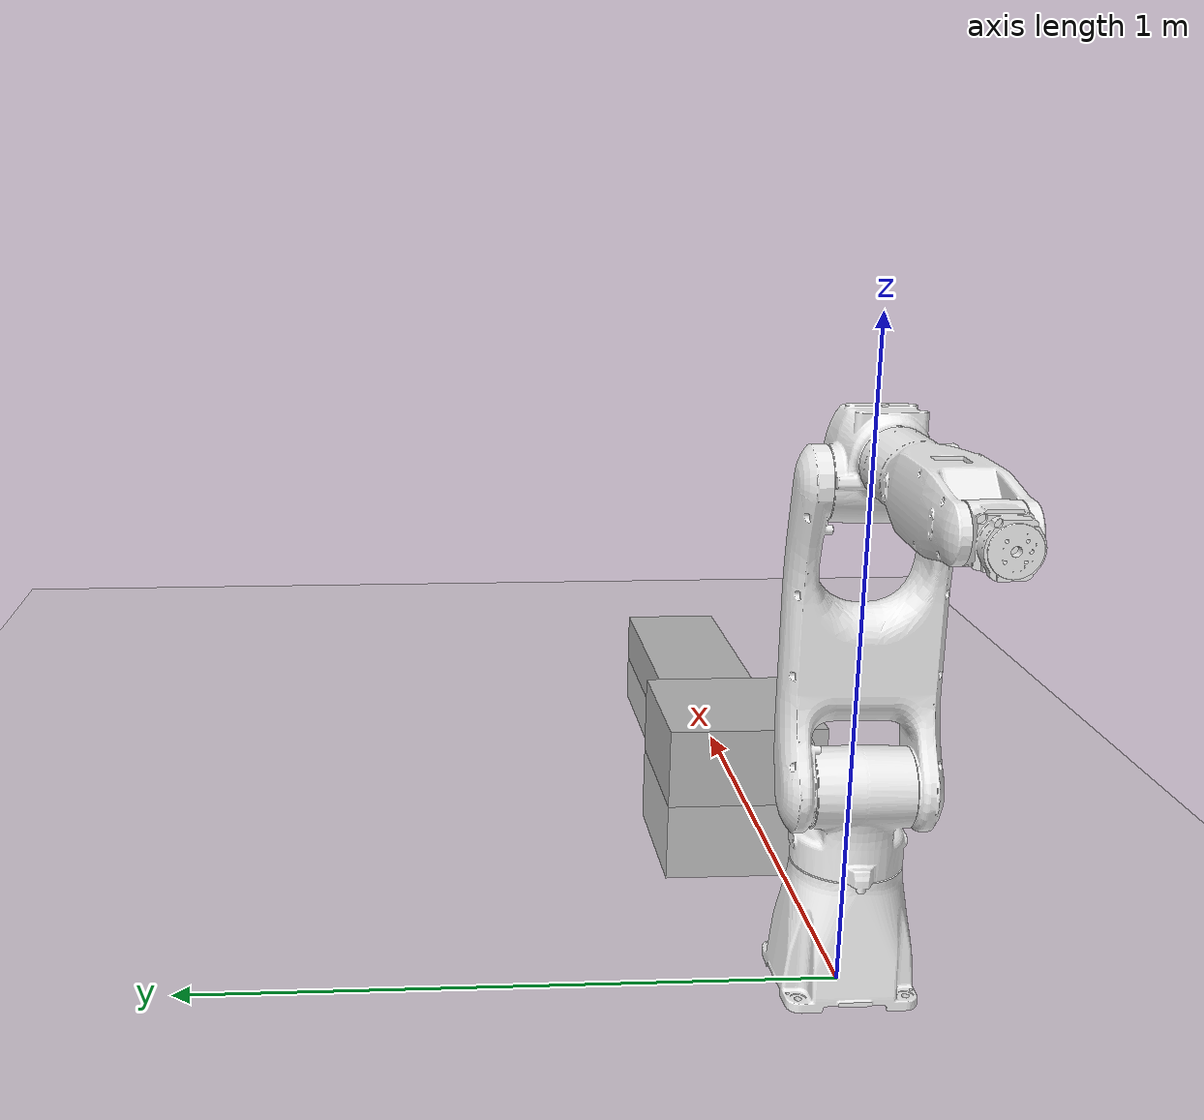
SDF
<?xml version="1.0" ?>
<sdf version="1.10">
  <world name="task_world">

    <!-- Ground -->
    <include>
      <uri>model://ground_plane</uri>
    </include>

    <!-- Robot -->
    <include>
      <uri>model://gp7_robot</uri>
      <pose>0 0 0 0 0 0</pose>
    </include>

    <!-- Box A -->
    <include>
      <uri>model://box_a</uri>
      <pose>0.8 0 0 0 0 0</pose>
    </include>

    <!-- Box B -->
    <include>
      <uri>model://box_b</uri>
      <pose>1.3 0 0 0 0 0</pose>
    </include>

  </world>
</sdf>

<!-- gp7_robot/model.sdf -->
<sdf version='1.11'>
  <model name='gp7_robot'>
    <link name='base_link'>
      <inertial>
        <pose>0.0055689938412378298 0.094757957173483301 6.0961164777522696e-07 0 0 0</pose>
        <mass>5.2154444291811197</mass>
        <inertia>
          <ixx>0.026025681837048901</ixx>
          <ixy>-0.00013984418689923399</ixy>
          <ixz>2.5924162943391901e-05</ixz>
          <iyy>0.021720532524860399</iyy>
          <iyz>-4.7676737539599701e-05</iyz>
          <izz>0.0252950790006553</izz>
        </inertia>
      </inertial>
      <collision name='base_link_collision'>
        <pose>0 0 0 0 0 0</pose>
        <geometry>
          <mesh>
            <scale>1 1 1</scale>
            <uri>model://gp7_robot_description/meshes/base_link.STL</uri>
          </mesh>
        </geometry>
      </collision>
      <visual name='base_link_visual'>
        <pose>0 0 0 0 0 0</pose>
        <geometry>
          <mesh>
            <scale>1 1 1</scale>
            <uri>model://gp7_robot_description/meshes/base_link.STL</uri>
          </mesh>
        </geometry>
        <material>
          <diffuse>0.941176474 0.941176474 0.941176474 1</diffuse>
          <ambient>0.941176474 0.941176474 0.941176474 1</ambient>
        </material>
      </visual>
    </link>
    <joint name='Joint_0' type='revolute'>
      <pose relative_to='base_link'>0 0 0.19009999999999999 1.5708 0 1.5446</pose>
      <parent>base_link</parent>
      <child>Link_1</child>
      <axis>
        <xyz>0 1 0</xyz>
        <limit>
          <lower>-2.9670999999999998</lower>
          <upper>2.9670999999999998</upper>
          <effort>100</effort>
          <velocity>1</velocity>
        </limit>
        <dynamics>
          <spring_reference>0</spring_reference>
          <spring_stiffness>0</spring_stiffness>
        </dynamics>
      </axis>
    </joint>
    <link name='Link_1'>
      <pose relative_to='Joint_0'>0 0 0 0 0 0</pose>
      <inertial>
        <pose>0.000134503059806308 0.099849443306266397 -0.015671831385240101 0 0 0</pose>
        <mass>2.9446982699504201</mass>
        <inertia>
          <ixx>0.011947013253614899</ixx>
          <ixy>-1.22546342961158e-06</ixy>
          <ixz>1.70307901366958e-06</ixz>
          <iyy>0.0088686903986490498</iyy>
          <iyz>0.00217925633010803</iyz>
          <izz>0.011181352972868</izz>
        </inertia>
      </inertial>
      <collision name='Link_1_collision'>
        <pose>0 0 0 0 0 0</pose>
        <geometry>
          <mesh>
            <scale>1 1 1</scale>
            <uri>model://gp7_robot_description/meshes/Link_1.STL</uri>
          </mesh>
        </geometry>
      </collision>
      <visual name='Link_1_visual'>
        <pose>0 0 0 0 0 0</pose>
        <geometry>
          <mesh>
            <scale>1 1 1</scale>
            <uri>model://gp7_robot_description/meshes/Link_1.STL</uri>
          </mesh>
        </geometry>
        <material>
          <diffuse>0.941176474 0.941176474 0.941176474 1</diffuse>
          <ambient>0.941176474 0.941176474 0.941176474 1</ambient>
        </material>
      </visual>
    </link>
    <joint name='Joint_1' type='revolute'>
      <pose relative_to='Link_1'>0 0.1399 -0.040000000000000001 -1.5707926536057684 -1.5707926536057681 -3.1415926535746808</pose>
      <parent>Link_1</parent>
      <child>Link_2</child>
      <axis>
        <xyz>0 1 0</xyz>
        <limit>
          <lower>-1.1345000000000001</lower>
          <upper>2.0943999999999998</upper>
          <effort>100</effort>
          <velocity>1</velocity>
        </limit>
        <dynamics>
          <spring_reference>0</spring_reference>
          <spring_stiffness>0</spring_stiffness>
        </dynamics>
      </axis>
    </joint>
    <link name='Link_2'>
      <pose relative_to='Joint_1'>0 0 0 0 0 0</pose>
      <inertial>
        <pose>0.0276252074771908 0.000201917636819981 -0.19498882158582101 0 0 0</pose>
        <mass>6.2405491880735697</mass>
        <inertia>
          <ixx>0.126298756807147</ixx>
          <ixy>4.2905911490289499e-05</ixy>
          <ixz>-0.00019255258824939399</ixz>
          <iyy>0.110519522576684</iyy>
          <iyz>0.00048284008084631402</iyz>
          <izz>0.027756566353699198</izz>
        </inertia>
      </inertial>
      <collision name='Link_2_collision'>
        <pose>0 0 0 0 0 0</pose>
        <geometry>
          <mesh>
            <scale>1 1 1</scale>
            <uri>model://gp7_robot_description/meshes/Link_2.STL</uri>
          </mesh>
        </geometry>
      </collision>
      <visual name='Link_2_visual'>
        <pose>0 0 0 0 0 0</pose>
        <geometry>
          <mesh>
            <scale>1 1 1</scale>
            <uri>model://gp7_robot_description/meshes/Link_2.STL</uri>
          </mesh>
        </geometry>
        <material>
          <diffuse>0.941176474 0.941176474 0.941176474 1</diffuse>
          <ambient>0.941176474 0.941176474 0.941176474 1</ambient>
        </material>
      </visual>
    </link>
    <joint name='Joint_2' type='revolute'>
      <pose relative_to='Link_2'>0 0 -0.44500000000000001 -3.1415853071795872 0 -3.1415853071795872</pose>
      <parent>Link_2</parent>
      <child>Link_3</child>
      <axis>
        <xyz>0 1 0</xyz>
        <limit>
          <lower>-1.2217</lower>
          <upper>3.3161</upper>
          <effort>100</effort>
          <velocity>1</velocity>
        </limit>
        <dynamics>
          <spring_reference>0</spring_reference>
          <spring_stiffness>0</spring_stiffness>
        </dynamics>
      </axis>
    </joint>
    <link name='Link_3'>
      <pose relative_to='Joint_2'>0 0 0 0 0 0</pose>
      <inertial>
        <pose>-0.015908660702799102 -0.00085391140292779796 0.020054990140129 0 0 0</pose>
        <mass>2.8491510567441498</mass>
        <inertia>
          <ixx>0.0082318608876079894</ixx>
          <ixy>2.89656323772818e-05</ixy>
          <ixz>-0.00090367401476526695</ixz>
          <iyy>0.0077915066956093402</iyy>
          <iyz>-3.8644326803904499e-05</iyz>
          <izz>0.0069341851652898502</izz>
        </inertia>
      </inertial>
      <collision name='Link_3_collision'>
        <pose>0 0 0 0 0 0</pose>
        <geometry>
          <mesh>
            <scale>1 1 1</scale>
            <uri>model://gp7_robot_description/meshes/Link_3.STL</uri>
          </mesh>
        </geometry>
      </collision>
      <visual name='Link_3_visual'>
        <pose>0 0 0 0 0 0</pose>
        <geometry>
          <mesh>
            <scale>1 1 1</scale>
            <uri>model://gp7_robot_description/meshes/Link_3.STL</uri>
          </mesh>
        </geometry>
        <material>
          <diffuse>0.941176474 0.941176474 0.941176474 1</diffuse>
          <ambient>0.941176474 0.941176474 0.941176474 1</ambient>
        </material>
      </visual>
    </link>
    <joint name='Joint_3' type='revolute'>
      <pose relative_to='Link_3'>0.068592 0 0.040000000000000001 1.5708 0 0</pose>
      <parent>Link_3</parent>
      <child>Link_4</child>
      <axis>
        <xyz>1 0 0</xyz>
        <limit>
          <lower>-3.3161</lower>
          <upper>3.3161</upper>
          <effort>100</effort>
          <velocity>1</velocity>
        </limit>
        <dynamics>
          <spring_reference>0</spring_reference>
          <spring_stiffness>0</spring_stiffness>
        </dynamics>
      </axis>
    </joint>
    <link name='Link_4'>
      <pose relative_to='Joint_3'>0 0 0 0 0 0</pose>
      <inertial>
        <pose>0.17717480238324099 -0.00015216015435715001 -0.000157756334050222 0 0 0</pose>
        <mass>2.7554348602764298</mass>
        <inertia>
          <ixx>0.0030857208259030201</ixx>
          <ixy>3.9989507541428699e-06</ixy>
          <ixz>-0.00031861637509493902</ixz>
          <iyy>0.0100848197701691</iyy>
          <iyz>-2.4879545180591099e-06</iyz>
          <izz>0.0107851177216757</izz>
        </inertia>
      </inertial>
      <collision name='Link_4_collision'>
        <pose>0 0 0 0 0 0</pose>
        <geometry>
          <mesh>
            <scale>1 1 1</scale>
            <uri>model://gp7_robot_description/meshes/Link_4.STL</uri>
          </mesh>
        </geometry>
      </collision>
      <visual name='Link_4_visual'>
        <pose>0 0 0 0 0 0</pose>
        <geometry>
          <mesh>
            <scale>1 1 1</scale>
            <uri>model://gp7_robot_description/meshes/Link_4.STL</uri>
          </mesh>
        </geometry>
        <material>
          <diffuse>0.941176474 0.941176474 0.941176474 1</diffuse>
          <ambient>0.941176474 0.941176474 0.941176474 1</ambient>
        </material>
      </visual>
    </link>
    <joint name='Joint_4' type='revolute'>
      <pose relative_to='Link_4'>0.37141000000000002 0 0 -3.1415853071795872 -4.2351647362715017e-22 1.5708</pose>
      <parent>Link_4</parent>
      <child>Link_5</child>
      <axis>
        <xyz>0 0 1</xyz>
        <limit>
          <lower>-2.3561999999999999</lower>
          <upper>2.3561999999999999</upper>
          <effort>100</effort>
          <velocity>1</velocity>
        </limit>
        <dynamics>
          <spring_reference>0</spring_reference>
          <spring_stiffness>0</spring_stiffness>
        </dynamics>
      </axis>
    </joint>
    <link name='Link_5'>
      <pose relative_to='Joint_4'>0 0 0 0 0 0</pose>
      <inertial>
        <pose>0.000253905873221272 0.013210493203085901 -0.00174847528345036 0 0 0</pose>
        <mass>0.24588630034740999</mass>
        <inertia>
          <ixx>0.00013953460225825699</ixx>
          <ixy>-2.1177178962878499e-06</ixy>
          <ixz>1.9618458058141299e-07</ixz>
          <iyy>0.00015683535192214599</iyy>
          <iyz>-1.2921491741417501e-06</iyz>
          <izz>0.00018561688108429999</izz>
        </inertia>
      </inertial>
      <collision name='Link_5_collision'>
        <pose>0 0 0 0 0 0</pose>
        <geometry>
          <mesh>
            <scale>1 1 1</scale>
            <uri>model://gp7_robot_description/meshes/Link_5.STL</uri>
          </mesh>
        </geometry>
      </collision>
      <visual name='Link_5_visual'>
        <pose>0 0 0 0 0 0</pose>
        <geometry>
          <mesh>
            <scale>1 1 1</scale>
            <uri>model://gp7_robot_description/meshes/Link_5.STL</uri>
          </mesh>
        </geometry>
        <material>
          <diffuse>0.941176474 0.941176474 0.941176474 1</diffuse>
          <ambient>0.941176474 0.941176474 0.941176474 1</ambient>
        </material>
      </visual>
    </link>
    <joint name='Joint_5' type='revolute'>
      <pose relative_to='Link_5'>0 0.065930000000000002 0 0 0 1.5708</pose>
      <parent>Link_5</parent>
      <child>Link_6</child>
      <axis>
        <xyz>1 0 0</xyz>
        <limit>
          <lower>-6.2813999999999997</lower>
          <upper>6.2813999999999997</upper>
          <effort>100</effort>
          <velocity>1</velocity>
        </limit>
        <dynamics>
          <spring_reference>0</spring_reference>
          <spring_stiffness>0</spring_stiffness>
        </dynamics>
      </axis>
    </joint>
    <link name='Link_6'>
      <pose relative_to='Joint_5'>0 0 0 0 0 0</pose>
      <inertial>
        <pose>0.0081842885534153496 -8.7374552037999794e-14 -6.6834147635036104e-05 0 0 0</pose>
        <mass>0.0241915724295803</mass>
        <inertia>
          <ixx>8.9808107318032402e-06</ixx>
          <ixy>-4.4592062945956301e-17</ixy>
          <ixz>2.0766263239998999e-09</ixz>
          <iyy>4.8110086890968902e-06</iyy>
          <iyz>-1.1730571716191401e-19</iyz>
          <izz>4.8353685088733401e-06</izz>
        </inertia>
      </inertial>
      <collision name='Link_6_collision'>
        <pose>0 0 0 0 0 0</pose>
        <geometry>
          <mesh>
            <scale>1 1 1</scale>
            <uri>model://gp7_robot_description/meshes/Link_6.STL</uri>
          </mesh>
        </geometry>
      </collision>
      <visual name='Link_6_visual'>
        <pose>0 0 0 0 0 0</pose>
        <geometry>
          <mesh>
            <scale>1 1 1</scale>
            <uri>model://gp7_robot_description/meshes/Link_6.STL</uri>
          </mesh>
        </geometry>
        <material>
          <diffuse>0.941176474 0.941176474 0.941176474 1</diffuse>
          <ambient>0.941176474 0.941176474 0.941176474 1</ambient>
        </material>
      </visual>
    </link>
  </model>
</sdf>

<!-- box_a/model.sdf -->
<sdf version="1.10">
  <model name="box_a">
    <link name="link">
      <visual name="visual">
        <geometry>
          <box>
            <size>0.3 0.3 0.3</size>
          </box>
        </geometry>
      </visual>
      <collision name="collision">
        <geometry>
          <box>
            <size>0.3 0.3 0.3</size>
          </box>
        </geometry>
      </collision>
    </link>
  </model>
</sdf>

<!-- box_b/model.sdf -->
<sdf version="1.10">
  <model name="box_b">
    <link name="link">
      <visual name="visual">
        <geometry>
          <box>
            <size>0.5 0.2 0.2</size>
          </box>
        </geometry>
      </visual>
      <collision name="collision">
        <geometry>
          <box>
            <size>0.5 0.2 0.2</size>
          </box>
        </geometry>
      </collision>
    </link>
  </model>
</sdf>
